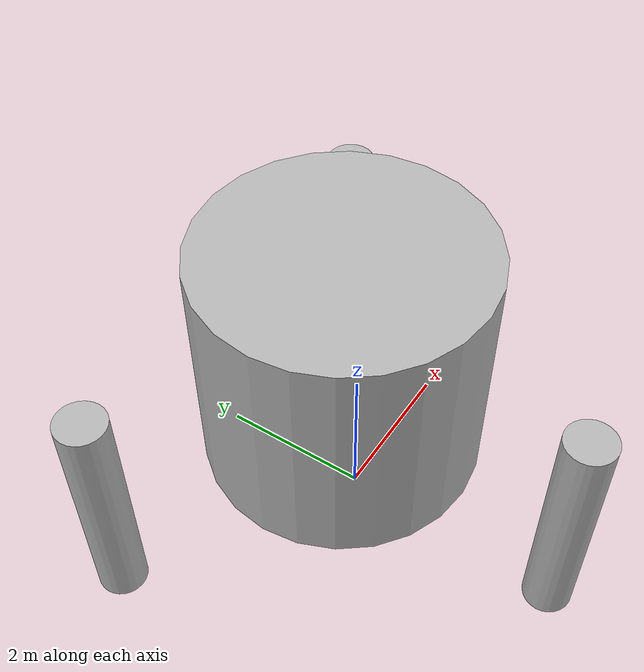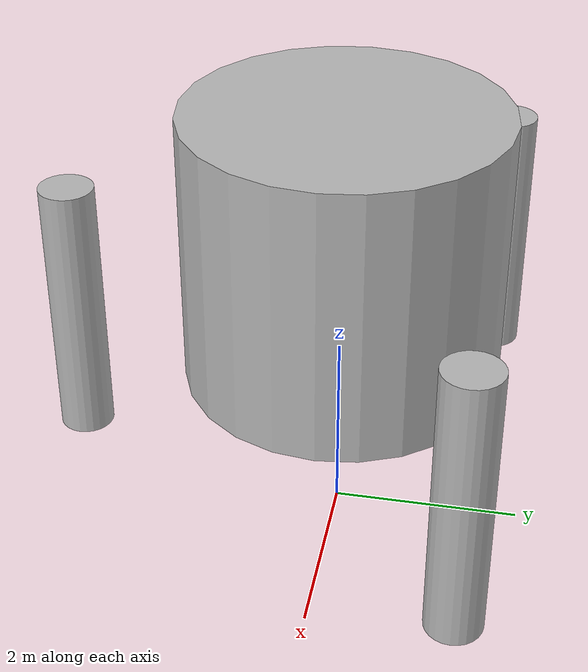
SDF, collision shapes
<?xml version="1.0" ?>
<sdf version="1.6">
  <model name="isru_processing_plant">
    <pose>0 0 0.4 0 0 0</pose>
    <static>true</static>
    <link name="link">
      <collision name='collision_2'>
        <pose frame=''>-3 1.5 1.5 0 -0 0</pose>
        <geometry>
          <cylinder>
            <radius>0.3</radius>
            <length>3</length>
          </cylinder>
        </geometry>
      </collision>
      <collision name='collision_1'>
        <pose frame=''>2.19 1.5 1.5 0 -0 0</pose>
        <geometry>
          <cylinder>
            <radius>0.3</radius>
            <length>3</length>
          </cylinder>
        </geometry>
      </collision>
      <collision name='collision_3'>
        <pose frame=''>-0.37 -3 1.5 0 -0 0</pose>
        <geometry>
          <cylinder>
            <radius>0.3</radius>
            <length>3</length>
          </cylinder>
        </geometry>
      </collision>
      <collision name='collision'>
        <pose frame=''>-0.38 -0.03 2.6 0 -0 0</pose>
        <geometry>
          <cylinder>
            <radius>1.7</radius>
            <length>3</length>
          </cylinder>
        </geometry>
      </collision>
      <visual name="visual">
        <geometry>
          <mesh>
            <uri>model://isru_processing_plant/meshes/model.dae</uri>
          </mesh>
        </geometry>
        <material>
          <script>
            <uri>model://isru_processing_plant/materials/scripts</uri>
            <uri>model://isru_processing_plant/materials/textures</uri>
            <name>isru_processing_plant</name>
          </script>
        </material>
      </visual>
    </link>
  </model>
</sdf>
